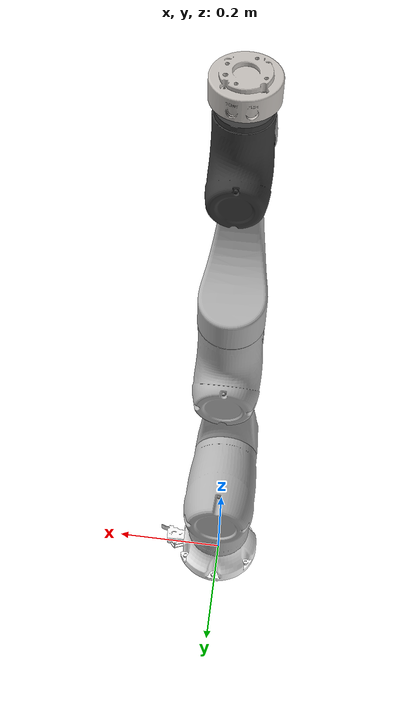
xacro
<?xml version="1.0" ?>
<robot name="dazu_robotic_arm_trial1" xmlns:xacro="http://www.ros.org/wiki/xacro">

  <link name="world" />
  <joint name="world_joint" type="fixed">
    <parent link="world" />
    <child link = "base_link" />
    <origin xyz="0.0 0.0 0.0" rpy="3.1415926536 3.1415926536 0.0" />
  </joint>

  <xacro:include filename="$(find dazu_robotic_arm_trial1)/urdf/dazu_robotic_arm_trial1.urdf" />
  <xacro:include filename="$(find dazu_robotic_arm_trial1)/urdf/dazu_robotic_arm_trial1.trans" />
  <xacro:include filename="$(find dazu_robotic_arm_trial1)/urdf/dazu_robotic_arm_trial1.gazebo" />

    <!-- 调用传动和控制器宏 -->
  <xacro:dazu_robotic_arm_trial1_gazebo/>
  <xacro:dazu_robotic_arm_trial1_transmission/>
  <!-- 对一些link进行gazebo的属性设置 -->
  <gazebo reference="Link_1">
      <material>Gazebo/Purple</material>
      <self_collide>false</self_collide>
      <gravity>true</gravity>
  </gazebo>
  <gazebo reference="Link_2">
      <material>Gazebo/Red</material>
      <gravity>true</gravity>
  </gazebo>
  <gazebo reference="Link_3">
      <material>Gazebo/Blue</material>
      <gravity>true</gravity>
  </gazebo>
  <gazebo reference="Link_4">
      <material>Gazebo/Green</material>
      <gravity>true</gravity>
  </gazebo>
  <gazebo reference="Link_5">
      <material>Gazebo/Yellow</material>
      <gravity>true</gravity>
  </gazebo>
  <gazebo reference="Link_6">
      <material>Gazebo/Orange</material>
      <gravity>true</gravity>
  </gazebo>

<gazebo>
    <physics type="ode">
        <max_step_size>0.001</max_step_size>
        <real_time_factor>1</real_time_factor>
        <real_time_update_rate>1000</real_time_update_rate>
    </physics>
</gazebo>

</robot>

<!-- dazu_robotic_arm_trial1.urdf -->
<robot
  name="dazu_robotic_arm_trial1">
  <link
    name="base_link">
    <inertial>
      <origin
        xyz="-0.0013449 -0.0001322 0.029293"
        rpy="0 0 0" />
      <mass
        value="8.0" />
      <inertia
        ixx="0.0015773"
        ixy="1.2223E-07"
        ixz="2.1696E-05"
        iyy="0.001446"
        iyz="6.1863E-08"
        izz="0.0023657" />
    </inertial>
    <visual>
      <origin
        xyz="0 0 0"
        rpy="0 0 0" />
      <geometry>
        <mesh
          filename="file://$(find dazu_robotic_arm_trial1)/meshes/base_link.STL" />
      </geometry>
      <material
        name="">
        <color
          rgba="1 1 1 1" />
      </material>
    </visual>
    <collision>
      <origin
        xyz="0 0 0"
        rpy="0 0 0" />
      <geometry>
        <mesh
          filename="file://$(find dazu_robotic_arm_trial1)/meshes/base_link.STL" />
      </geometry>
    </collision>
  </link>
  <link
    name="Link_1">
    <inertial>
      <origin
        xyz="-3.3881E-06 0.0059071 0.10092"
        rpy="0 0 0" />
      <mass
        value="8.0" />
      <inertia
        ixx="1.0"
        ixy="0.0"
        ixz="0.0"
        iyy="1.0"
        iyz="0.0"
        izz="1.0" />
    </inertial>
    <visual>
      <origin
        xyz="0 0 0"
        rpy="0 0 0" />
      <geometry>
        <mesh
          filename="file://$(find dazu_robotic_arm_trial1)/meshes/Link_1.STL" />
      </geometry>
      <material
        name="">
        <color
          rgba="0.69804 0.69804 0.69804 1" />
      </material>
    </visual>
    <collision>
      <origin
        xyz="0 0 0"
        rpy="0 0 0" />
      <geometry>
        <mesh
          filename="file://$(find dazu_robotic_arm_trial1)/meshes/Link_1.STL" />
      </geometry>
    </collision>
  </link>
  <joint
    name="Joint_1"
    type="revolute">
    <origin
      xyz="-0.0021038 -0.0001266 0.081"
      rpy="0 0 0" />
    <parent
      link="base_link" />
    <child
      link="Link_1" />
    <axis
      xyz="0 0 1" />
    <limit
      lower="-3.14"
      upper="3.14"
      effort="1000"
      velocity="3.000001" />
    <dynamics damping="10.0" friction="10.0"/>
  </joint>
  <link
    name="Link_2">
    <inertial>
      <origin
        xyz="3.37437573807456E-06 0.00469157479008332 0.159177712639718"
        rpy="0 0 0" />
      <mass
        value="8.0" />
      <inertia
        ixx="1.0"
        ixy="0.0"
        ixz="0.0"
        iyy="1.0"
        iyz="0.0"
        izz="1.0" />
    </inertial>
    <visual>
      <origin
        xyz="0 0 0"
        rpy="0 0 0" />
      <geometry>
        <mesh
          filename="file://$(find dazu_robotic_arm_trial1)/meshes/Link_2.STL" />
      </geometry>
      <material
        name="">
        <color
          rgba="0.698039215686274 0.698039215686274 0.698039215686274 1" />
      </material>
    </visual>
    <collision>
      <origin
        xyz="0 0 0"
        rpy="0 0 0" />
      <geometry>
        <mesh
          filename="file://$(find dazu_robotic_arm_trial1)/meshes/Link_2.STL" />
      </geometry>
    </collision>
  </link>
  <joint
    name="Joint_2"
    type="revolute">
    <origin
      xyz="0 0.12298 0.138"
      rpy="0 0 0" />
    <parent
      link="Link_1" />
    <child
      link="Link_2" />
    <axis
      xyz="0 1 0" />
    <limit
      lower="-1.57"
      upper="1.57"
      effort="1000"
      velocity="3.000001" />
    <dynamics damping="10.0" friction="10.0"/>
  </joint>
  <link
    name="Link_3">
    <inertial>
      <origin
        xyz="-9.37545025325856E-06 0.01027554937274 0.0303135532750572"
        rpy="0 0 0" />
      <mass
        value="8.0" />
      <inertia
        ixx="1.0"
        ixy="0.0"
        ixz="0.0"
        iyy="1.0"
        iyz="0.0"
        izz="1.0" />
    </inertial>
    <visual>
      <origin
        xyz="0 0 0"
        rpy="0 0 0" />
      <geometry>
        <mesh
          filename="file://$(find dazu_robotic_arm_trial1)/meshes/Link_3.STL" />
      </geometry>
      <material
        name="">
        <color
          rgba="0.698039215686274 0.698039215686274 0.698039215686274 1" />
      </material>
    </visual>
    <collision>
      <origin
        xyz="0 0 0"
        rpy="0 0 0" />
      <geometry>
        <mesh
          filename="file://$(find dazu_robotic_arm_trial1)/meshes/Link_3.STL" />
      </geometry>
    </collision>
  </link>
  <joint
    name="Joint_3"
    type="revolute">
    <origin
      xyz="0 -0.12763 0.38"
      rpy="0 0 0" />
    <parent
      link="Link_2" />
    <child
      link="Link_3" />
    <axis
      xyz="0 -1 0" />
    <limit
      lower="-1.57"
      upper="1.57"
      effort="1000"
      velocity="3.000001" />
    <dynamics damping="10.0" friction="10.0"/>
  </joint>
  <link
    name="Link_4">
    <inertial>
      <origin
        xyz="3.4251571009817E-05 0.0669795880887711 0.0923076640210112"
        rpy="0 0 0" />
      <mass
        value="8.0" />
      <inertia
        ixx="1.0"
        ixy="0.0"
        ixz="0.0"
        iyy="1.0"
        iyz="0.0"
        izz="1.0" />
    </inertial>
    <visual>
      <origin
        xyz="0 0 0"
        rpy="0 0 0" />
      <geometry>
        <mesh
          filename="file://$(find dazu_robotic_arm_trial1)/meshes/Link_4.STL" />
      </geometry>
      <material
        name="">
        <color
          rgba="0.698039215686274 0.698039215686274 0.698039215686274 1" />
      </material>
    </visual>
    <collision>
      <origin
        xyz="0 0 0"
        rpy="0 0 0" />
      <geometry>
        <mesh
          filename="file://$(find dazu_robotic_arm_trial1)/meshes/Link_4.STL" />
      </geometry>
    </collision>
  </link>
  <joint
    name="Joint_4"
    type="revolute">
    <origin
      xyz="0 0.0046413 0.15127"
      rpy="0.081449 0 0" />
    <parent
      link="Link_3" />
    <child
      link="Link_4" />
    <axis
      xyz="0 0 1" />
    <limit
      lower="-3.14"
      upper="3.14"
      effort="1000"
      velocity="3.000001" />
    <dynamics damping="10.0" friction="10.0"/>
  </joint>
  <link
    name="Link_5">
    <inertial>
      <origin
        xyz="8.43176552533148E-07 0.00189429511558399 0.0225173791286002"
        rpy="0 0 0" />
      <mass
        value="8.0" />
      <inertia
        ixx="1.0"
        ixy="0.0"
        ixz="0.0"
        iyy="1.0"
        iyz="0.0"
        izz="1.0" />
    </inertial>
    <visual>
      <origin
        xyz="0 0 0"
        rpy="0 0 0" />
      <geometry>
        <mesh
          filename="file://$(find dazu_robotic_arm_trial1)/meshes/Link_5.STL" />
      </geometry>
      <material
        name="">
        <color
          rgba="0.223529411764706 0.223529411764706 0.223529411764706 1" />
      </material>
    </visual>
    <collision>
      <origin
        xyz="0 0 0"
        rpy="0 0 0" />
      <geometry>
        <mesh
          filename="file://$(find dazu_robotic_arm_trial1)/meshes/Link_5.STL" />
      </geometry>
    </collision>
  </link>
  <joint
    name="Joint_5"
    type="revolute">
    <origin
      xyz="0 0.024259 0.26765"
      rpy="-0.081449 0 0" />
    <parent
      link="Link_4" />
    <child
      link="Link_5" />
    <axis
      xyz="0 -1 0" />
    <limit
      lower="-1.57"
      upper="1.57"
      effort="1000"
      velocity="3.000001" />
    <dynamics damping="10.0" friction="10.0"/>
  </joint>
  <link
    name="Link_6">
    <inertial>
      <origin
        xyz="-1.82018507104034E-06 0.000669132642277363 -0.00529587800179732"
        rpy="0 0 0" />
      <mass
        value="8.0" />
      <inertia
        ixx="1.0"
        ixy="0.0"
        ixz="0.0"
        iyy="1.0"
        iyz="0.0"
        izz="1.0" />
    </inertial>
    <visual>
      <origin
        xyz="0 0 0"
        rpy="0 0 0" />
      <geometry>
        <mesh
          filename="file://$(find dazu_robotic_arm_trial1)/meshes/Link_6.STL" />
      </geometry>
      <material
        name="">
        <color
          rgba="0.772549019607843 0.752941176470588 0.733333333333333 1" />
      </material>
    </visual>
    <collision>
      <origin
        xyz="0 0 0"
        rpy="0 0 0" />
      <geometry>
        <mesh
          filename="file://$(find dazu_robotic_arm_trial1)/meshes/Link_6.STL" />
      </geometry>
    </collision>
  </link>
  <joint
    name="Joint_6"
    type="revolute">
    <origin
      xyz="1.7884E-05 -0.0027482 0.13422"
      rpy="0 0 0" />
    <parent
      link="Link_5" />
    <child
      link="Link_6" />
    <axis
      xyz="0 0 1" />
    <limit
      lower="-3.14"
      upper="3.14"
      effort="1000"
      velocity="3.000001" />
    <dynamics damping="10.0" friction="10.0"/>
  </joint>
</robot>
